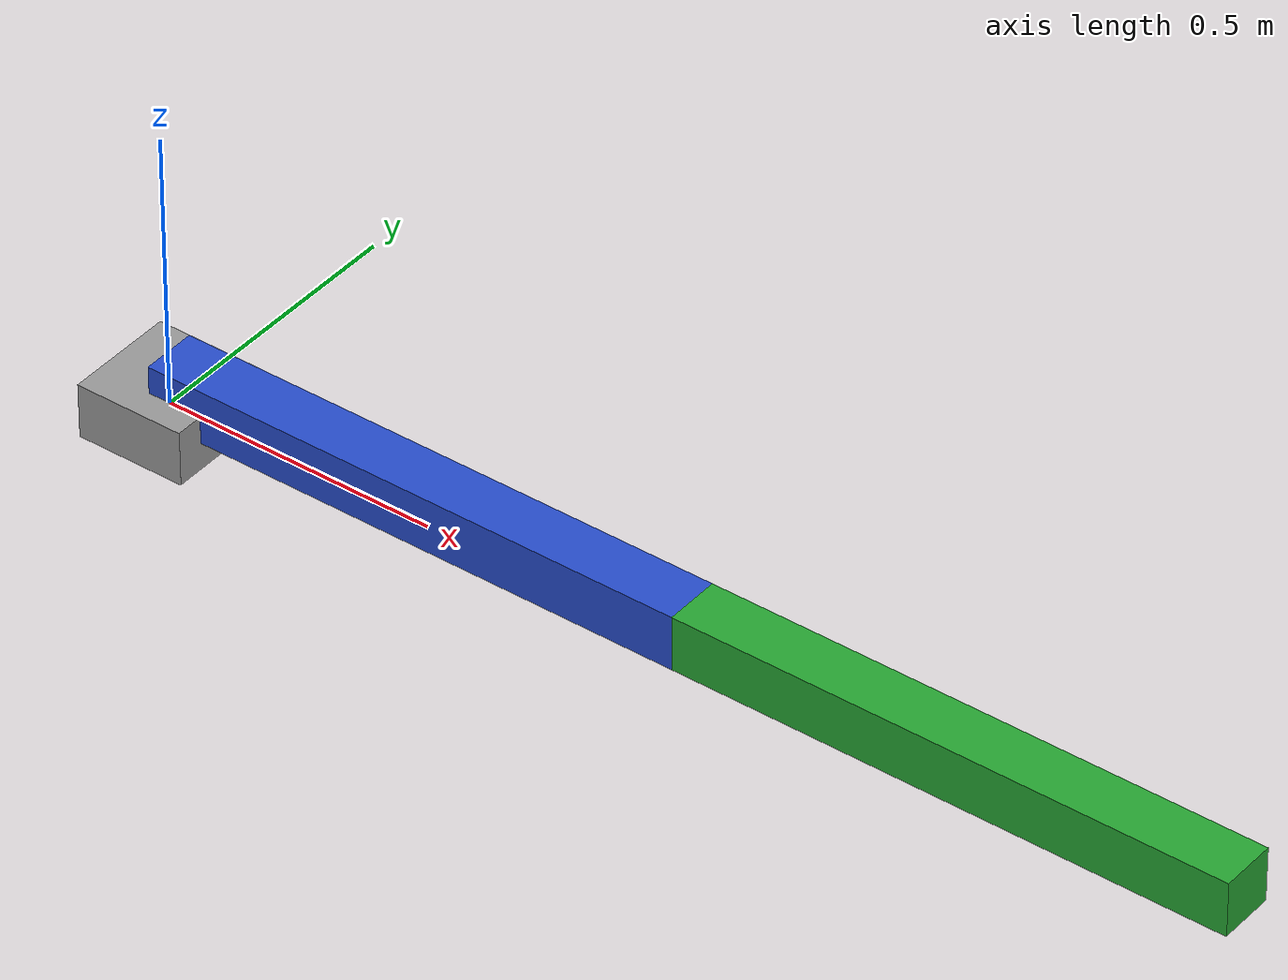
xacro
<?xml version="1.0"?>
<robot name="my_arm" xmlns:xacro="http://www.ros.org/wiki/xacro">

  <!-- base link -->
  <link name="base_link">
    <inertial>
      <mass value="1.0"/>
      <origin xyz="0 0 0" rpy="0 0 0"/>
      <inertia ixx="0.1" iyy="0.1" izz="0.1" ixy="0" ixz="0" iyz="0"/>
    </inertial>
    <visual>
      <origin xyz="0 0 0" rpy="0 0 0"/>
      <geometry>
        <box size="0.2 0.2 0.1"/>
      </geometry>
      <material name="grey"/>
    </visual>
    <collision>
      <origin xyz="0 0 0" rpy="0 0 0"/>
      <geometry>
        <box size="0.2 0.2 0.1"/>
      </geometry>
    </collision>
  </link>

  <!-- link1 -->
  <link name="link1">
    <inertial>
      <mass value="1.0"/>
      <origin xyz="0.5 0 0" rpy="0 0 0"/>
      <inertia ixx="0.1" iyy="0.1" izz="0.1" ixy="0" ixz="0" iyz="0"/>
    </inertial>
    <visual>
      <origin xyz="0.5 0 0" rpy="0 0 0"/>
      <geometry>
        <box size="1.0 0.1 0.1"/>
      </geometry>
      <material name="blue"/>
    </visual>
    <collision>
      <origin xyz="0.5 0 0" rpy="0 0 0"/>
      <geometry>
        <box size="1.0 0.1 0.1"/>
      </geometry>
    </collision>
  </link>

  <!-- joint1: περιστροφή γύρω από z στην βάση -->
  <joint name="joint1" type="revolute">
    <parent link="base_link"/>
    <child link="link1"/>
    <origin xyz="0 0 0.05" rpy="0 0 0"/>
    <axis xyz="0 0 1"/>
    <limit lower="-3.14" upper="3.14" effort="10.0" velocity="1.0"/>
  </joint>

  <!-- link2 -->
  <link name="link2">
    <inertial>
      <mass value="1.0"/>
      <origin xyz="0.5 0 0" rpy="0 0 0"/>
      <inertia ixx="0.1" iyy="0.1" izz="0.1" ixy="0" ixz="0" iyz="0"/>
    </inertial>
    <visual>
      <origin xyz="0.5 0 0" rpy="0 0 0"/>
      <geometry>
        <box size="1.0 0.1 0.1"/>
      </geometry>
      <material name="green"/>
    </visual>
    <collision>
      <origin xyz="0.5 0 0" rpy="0 0 0"/>
      <geometry>
        <box size="1.0 0.1 0.1"/>
      </geometry>
    </collision>
  </link>

  <!-- joint2: περιστροφή στο άκρο του link1 -->
  <joint name="joint2" type="revolute">
    <parent link="link1"/>
    <child link="link2"/>
    <origin xyz="1.0 0 0" rpy="0 0 0"/>
    <axis xyz="0 0 1"/>
    <limit lower="-3.14" upper="3.14" effort="10.0" velocity="1.0"/>
  </joint>

</robot>
